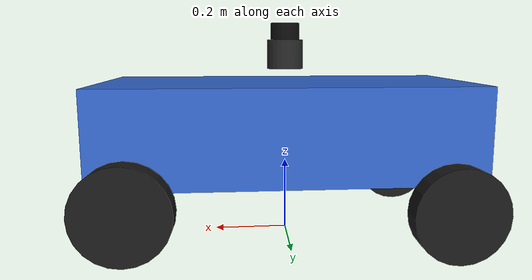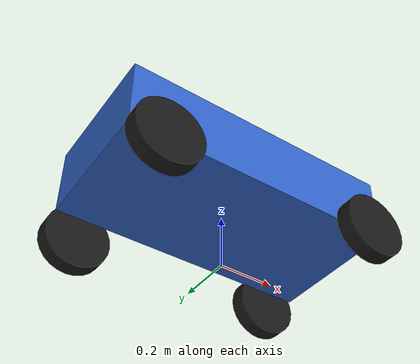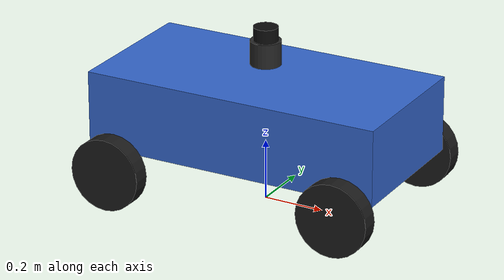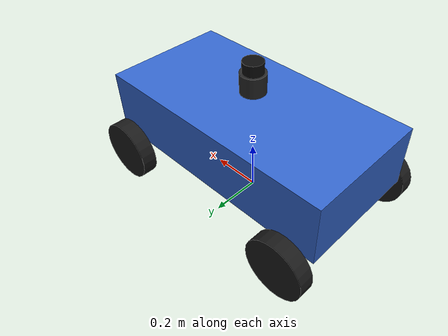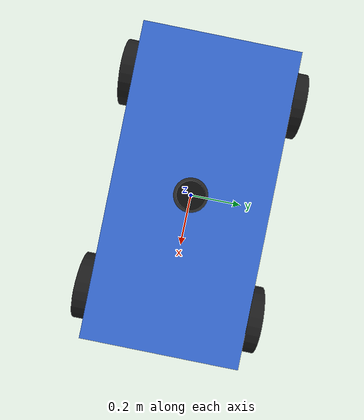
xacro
<?xml version="1.0"?>
<robot name="simple_robot" xmlns:xacro="http://www.ros.org/wiki/xacro">

    <xacro:include filename="carver_controller_classic.xacro"/>

    <xacro:property name="body_length" value="1.0"/>
    <xacro:property name="body_width" value="0.5"/>
    <xacro:property name="body_height" value="0.25"/>

    <xacro:property name="wheel_radius" value="0.12"/>
    <xacro:property name="wheel_thickness" value="0.06"/>

    <xacro:property name="steering_radius" value="0.025"/>
    <xacro:property name="steering_length" value="0.04"/>

    <link name="base_footprint"/>

    <link name="base_link">
        <inertial>
            <origin xyz="0 0 0" rpy="0 0 0"/>
            <mass value="40.0"/>
            <inertia ixx="1.5" ixy="0.0" ixz="0.0"
                     iyy="4.0" iyz="0.0" izz="5.0"/>
        </inertial>
        <visual>
            <origin xyz="0 0 0" rpy="0 0 0"/>
            <geometry>
                <box size="${body_length} ${body_width} ${body_height}"/>
            </geometry>
            <material name="robot_blue">
                <color rgba="0.2 0.4 0.8 1"/>
            </material>
        </visual>
        <collision>
            <origin xyz="0 0 0" rpy="0 0 0"/>
            <geometry>
                <box size="${body_length} ${body_width} ${body_height}"/>
            </geometry>
        </collision>
    </link>

    <joint name="base_footprint_joint" type="fixed">
        <parent link="base_footprint"/>
        <child link="base_link"/>
        <origin xyz="0 0 0.3" rpy="0 0 0"/>
    </joint>

    <link name="front_right_steering_Link">
        <inertial>
            <origin xyz="0 0 0" rpy="0 0 0"/>
            <mass value="0.3"/>
            <inertia ixx="0.0005" ixy="0.0" ixz="0.0"
                     iyy="0.0005" iyz="0.0" izz="0.0005"/>
        </inertial>
        <visual>
            <origin xyz="0 0 0" rpy="0 0 0"/>
            <geometry>
                <cylinder radius="${steering_radius}" length="${steering_length}"/>
            </geometry>
            <material name="dark_grey">
                <color rgba="0.3 0.3 0.3 1"/>
            </material>
        </visual>
        <collision>
            <origin xyz="0 0 0" rpy="0 0 0"/>
            <geometry>
                <cylinder radius="${steering_radius}" length="${steering_length}"/>
            </geometry>
        </collision>
    </link>

    <joint name="base_front_right_steering_joint" type="revolute">
        <origin xyz="0.4 -0.3 -0.125" rpy="0 0 0"/>
        <parent link="base_link"/>
        <child link="front_right_steering_Link"/>
        <axis xyz="0 0 1"/>
        <limit lower="-1.57" upper="1.57" effort="50" velocity="5"/>
    </joint>

    <link name="front_right_wheel_Link">
        <inertial>
            <origin xyz="0 0 0" rpy="0 0 0"/>
            <mass value="1.5"/>
            <inertia ixx="0.015" ixy="0.0" ixz="0.0"
                     iyy="0.015" iyz="0.0" izz="0.015"/>
        </inertial>
        <visual>
            <origin xyz="0 0 0" rpy="0 0 0"/>
            <geometry>
                <cylinder radius="${wheel_radius}" length="${wheel_thickness}"/>
            </geometry>
            <material name="wheel_black">
                <color rgba="0.1 0.1 0.1 1"/>
            </material>
        </visual>
        <collision>
            <origin xyz="0 0 0" rpy="0 0 0"/>
            <geometry>
                <cylinder radius="${wheel_radius}" length="${wheel_thickness}"/>
            </geometry>
        </collision>
    </link>

    <joint name="front_right_steering_front_right_wheel_joint" type="continuous">
        <origin xyz="0 0 -0.035" rpy="1.5708 0 0"/>
        <parent link="front_right_steering_Link"/>
        <child link="front_right_wheel_Link"/>
        <axis xyz="0 0 1"/>
        <limit effort="50" velocity="50"/>
        <dynamics damping="0.05" friction="0.05"/>
    </joint>

    <link name="front_left_steering_Link">
        <inertial>
            <origin xyz="0 0 0" rpy="0 0 0"/>
            <mass value="0.3"/>
            <inertia ixx="0.0005" ixy="0.0" ixz="0.0"
                     iyy="0.0005" iyz="0.0" izz="0.0005"/>
        </inertial>
        <visual>
            <origin xyz="0 0 0" rpy="0 0 0"/>
            <geometry>
                <cylinder radius="${steering_radius}" length="${steering_length}"/>
            </geometry>
            <material name="dark_grey">
                <color rgba="0.3 0.3 0.3 1"/>
            </material>
        </visual>
        <collision>
            <origin xyz="0 0 0" rpy="0 0 0"/>
            <geometry>
                <cylinder radius="${steering_radius}" length="${steering_length}"/>
            </geometry>
        </collision>
    </link>

    <joint name="base_front_left_steering_joint" type="revolute">
        <origin xyz="0.4 0.3 -0.125" rpy="0 0 0"/>
        <parent link="base_link"/>
        <child link="front_left_steering_Link"/>
        <axis xyz="0 0 1"/>
        <limit lower="-1.57" upper="1.57" effort="50" velocity="5"/>
    </joint>

    <link name="front_left_wheel_Link">
        <inertial>
            <origin xyz="0 0 0" rpy="0 0 0"/>
            <mass value="1.5"/>
            <inertia ixx="0.015" ixy="0.0" ixz="0.0"
                     iyy="0.015" iyz="0.0" izz="0.015"/>
        </inertial>
        <visual>
            <origin xyz="0 0 0" rpy="0 0 0"/>
            <geometry>
                <cylinder radius="${wheel_radius}" length="${wheel_thickness}"/>
            </geometry>
            <material name="wheel_black">
                <color rgba="0.1 0.1 0.1 1"/>
            </material>
        </visual>
        <collision>
            <origin xyz="0 0 0" rpy="0 0 0"/>
            <geometry>
                <cylinder radius="${wheel_radius}" length="${wheel_thickness}"/>
            </geometry>
        </collision>
    </link>

    <joint name="front_left_steering_front_left_wheel_joint" type="continuous">
        <origin xyz="0 0 -0.035" rpy="1.5708 0 0"/>
        <parent link="front_left_steering_Link"/>
        <child link="front_left_wheel_Link"/>
        <axis xyz="0 0 1"/>
        <limit effort="50" velocity="50"/>
        <dynamics damping="0.05" friction="0.05"/>
    </joint>

    <link name="rear_right_wheel_Link">
        <inertial>
            <origin xyz="0 0 0" rpy="0 0 0"/>
            <mass value="1.5"/>
            <inertia ixx="0.015" ixy="0.0" ixz="0.0"
                     iyy="0.015" iyz="0.0" izz="0.015"/>
        </inertial>
        <visual>
            <origin xyz="0 0 0" rpy="0 0 0"/>
            <geometry>
                <cylinder radius="${wheel_radius}" length="${wheel_thickness}"/>
            </geometry>
            <material name="wheel_black">
                <color rgba="0.1 0.1 0.1 1"/>
            </material>
        </visual>
        <collision>
            <origin xyz="0 0 0" rpy="0 0 0"/>
            <geometry>
                <cylinder radius="${wheel_radius}" length="${wheel_thickness}"/>
            </geometry>
        </collision>
    </link>

    <joint name="base_rear_right_wheel_joint" type="continuous">
        <origin xyz="-0.4 -0.3 -0.18" rpy="1.5708 0 0"/>
        <parent link="base_link"/>
        <child link="rear_right_wheel_Link"/>
        <axis xyz="0 0 1"/>
        <limit effort="50" velocity="50"/>
        <dynamics damping="0.05" friction="0.05"/>
    </joint>

    <link name="rear_left_wheel_Link">
        <inertial>
            <origin xyz="0 0 0" rpy="0 0 0"/>
            <mass value="1.5"/>
            <inertia ixx="0.015" ixy="0.0" ixz="0.0"
                     iyy="0.015" iyz="0.0" izz="0.015"/>
        </inertial>
        <visual>
            <origin xyz="0 0 0" rpy="0 0 0"/>
            <geometry>
                <cylinder radius="${wheel_radius}" length="${wheel_thickness}"/>
            </geometry>
            <material name="wheel_black">
                <color rgba="0.1 0.1 0.1 1"/>
            </material>
        </visual>
        <collision>
            <origin xyz="0 0 0" rpy="0 0 0"/>
            <geometry>
                <cylinder radius="${wheel_radius}" length="${wheel_thickness}"/>
            </geometry>
        </collision>
    </link>

    <joint name="base_rear_left_wheel_joint" type="continuous">
        <origin xyz="-0.4 0.3 -0.18" rpy="1.5708 0 0"/>
        <parent link="base_link"/>
        <child link="rear_left_wheel_Link"/>
        <axis xyz="0 0 1"/>
        <limit effort="50" velocity="50"/>
        <dynamics damping="0.05" friction="0.05"/>
    </joint>

    <link name="velodyne_base_link">
        <inertial>
            <origin xyz="0 0 0" rpy="0 0 0"/>
            <mass value="0.8"/>
            <inertia ixx="0.005" ixy="0.0" ixz="0.0"
                     iyy="0.005" iyz="0.0" izz="0.005"/>
        </inertial>
        <visual>
            <origin xyz="0 0 0" rpy="0 0 0"/>
            <geometry>
                <cylinder radius="0.05" length="0.08"/>
            </geometry>
            <material name="lidar_color">
                <color rgba="0.15 0.15 0.15 1"/>
            </material>
        </visual>
        <collision>
            <origin xyz="0 0 0" rpy="0 0 0"/>
            <geometry>
                <cylinder radius="0.05" length="0.08"/>
            </geometry>
        </collision>
    </link>

    <joint name="velodyne_base_joint" type="fixed">
        <origin xyz="0 0 0.2" rpy="0 0 0"/>
        <parent link="base_link"/>
        <child link="velodyne_base_link"/>
    </joint>

    <link name="velodyne">
        <inertial>
            <origin xyz="0 0 0" rpy="0 0 0"/>
            <mass value="0.1"/>
            <inertia ixx="0.001" ixy="0.0" ixz="0.0"
                     iyy="0.001" iyz="0.0" izz="0.001"/>
        </inertial>
        <visual>
            <origin xyz="0 0 0" rpy="0 0 0"/>
            <geometry>
                <cylinder radius="0.04" length="0.05"/>
            </geometry>
            <material name="sensor_color">
                <color rgba="0.05 0.05 0.05 1"/>
            </material>
        </visual>
        <collision>
            <origin xyz="0 0 0" rpy="0 0 0"/>
            <geometry>
                <cylinder radius="0.04" length="0.05"/>
            </geometry>
        </collision>
    </link>

    <joint name="velodyne_joint" type="fixed">
        <origin xyz="0 0 0.06" rpy="0 0 0"/>
        <parent link="velodyne_base_link"/>
        <child link="velodyne"/>
    </joint>

    <link name="imu_link">
        <inertial>
            <origin xyz="0 0 0" rpy="0 0 0"/>
            <mass value="0.005"/>
            <inertia ixx="0.00001" ixy="0.0" ixz="0.0"
                     iyy="0.00001" iyz="0.0" izz="0.00001"/>
        </inertial>
        <visual>
            <origin xyz="0 0 0" rpy="0 0 0"/>
            <geometry>
                <box size="0.015 0.015 0.008"/>
            </geometry>
            <material name="imu_green">
                <color rgba="0.0 0.8 0.2 1"/>
            </material>
        </visual>
        <collision>
            <origin xyz="0 0 0" rpy="0 0 0"/>
            <geometry>
                <box size="0.015 0.015 0.008"/>
            </geometry>
        </collision>
    </link>

    <joint name="imu_joint" type="fixed">
        <origin xyz="0.05 0 0.08" rpy="0 0 0"/>
        <parent link="base_link"/>
        <child link="imu_link"/>
    </joint>

    <gazebo reference="rear_right_wheel_Link">
        <mu1>1.2</mu1>
        <mu2>1.2</mu2>
        <kp>1000000.0</kp>
        <kd>100.0</kd>
        <minDepth>0.001</minDepth>
        <maxVel>1.0</maxVel>
        <material>Gazebo/DarkGrey</material>
    </gazebo>

    <gazebo reference="rear_left_wheel_Link">
        <mu1>1.2</mu1>
        <mu2>1.2</mu2>
        <kp>1000000.0</kp>
        <kd>100.0</kd>
        <minDepth>0.001</minDepth>
        <maxVel>1.0</maxVel>
        <material>Gazebo/DarkGrey</material>
    </gazebo>

    <gazebo reference="front_right_wheel_Link">
        <mu1>1.2</mu1>
        <mu2>1.2</mu2>
        <kp>1000000.0</kp>
        <kd>100.0</kd>
        <minDepth>0.001</minDepth>
        <maxVel>1.0</maxVel>
        <material>Gazebo/DarkGrey</material>
    </gazebo>

    <gazebo reference="front_left_wheel_Link">
        <mu1>1.2</mu1>
        <mu2>1.2</mu2>
        <kp>1000000.0</kp>
        <kd>100.0</kd>
        <minDepth>0.001</minDepth>
        <maxVel>1.0</maxVel>
        <material>Gazebo/DarkGrey</material>
    </gazebo>

    <gazebo reference="velodyne">
        <sensor name="velodyne_sensor" type="ray">
            <always_on>true</always_on>
            <update_rate>10</update_rate>
            <visualize>false</visualize>
            <pose>0 0 0 0 0 0</pose>
            <ray>
                <scan>
                    <horizontal>
                        <samples>1800</samples>
                        <resolution>1</resolution>
                        <min_angle>-3.141592</min_angle>
                        <max_angle>3.141592</max_angle>
                    </horizontal>
                    <vertical>
                        <samples>16</samples>
                        <resolution>1</resolution>
                        <min_angle>-0.2617993878</min_angle>
                        <max_angle>0.2617993878</max_angle>
                    </vertical>
                </scan>
                <range>
                    <min>0.05</min>
                    <max>30.0</max>
                    <resolution>0.01</resolution>
                </range>
                <noise>
                    <type>gaussian</type>
                    <mean>0.0</mean>
                    <stddev>0.01</stddev>
                </noise>
            </ray>
            <plugin name="velodyne_plugin" filename="libgazebo_ros_velodyne_laser.so">
                <topicName>/velodyne_points</topicName>
                <frameName>velodyne</frameName>
                <organize_cloud>false</organize_cloud>
                <min_range>0.05</min_range>
                <max_range>30.0</max_range>
                <gaussianNoise>0.008</gaussianNoise>
            </plugin>
        </sensor>
    </gazebo>

    <gazebo reference="imu_link">
        <sensor name="imu_sensor" type="imu">
            <always_on>true</always_on>
            <update_rate>100</update_rate>
            <visualize>true</visualize>
            <plugin filename="libgazebo_ros_imu_sensor.so" name="imu_plugin">
                <ros>
                    <namespace>/</namespace>
                    <remapping>~/out:=imu/data</remapping>
                </ros>
                <initial_orientation_as_reference>false</initial_orientation_as_reference>
                <frame_name>imu_link</frame_name>
            </plugin>
        </sensor>
    </gazebo>

    <!-- Comment for testing localization -->
    <gazebo>
        <plugin name="p3d_base_controller" filename="libgazebo_ros_p3d.so">
            <update_rate>50</update_rate>
            <body_name>base_footprint</body_name>
            <frame_name>odom</frame_name>
            <gaussian_noise>0.01</gaussian_noise>
            <xyz_offset>0 0 0</xyz_offset>
            <rpy_offset>0 0 0</rpy_offset>
            <ros>
                <namespace>/</namespace>
                <remapping>odom:=odom</remapping>
            </ros>
        </plugin>

        <plugin name="ground_truth" filename="libgazebo_ros_planar_move.so">
            <update_rate>50</update_rate>
            <robot_base_frame>base_footprint</robot_base_frame>
            <odometry_frame>odom</odometry_frame>
            <publish_odom>false</publish_odom>
            <publish_odom_tf>true</publish_odom_tf>
        </plugin>
    </gazebo>

</robot>
